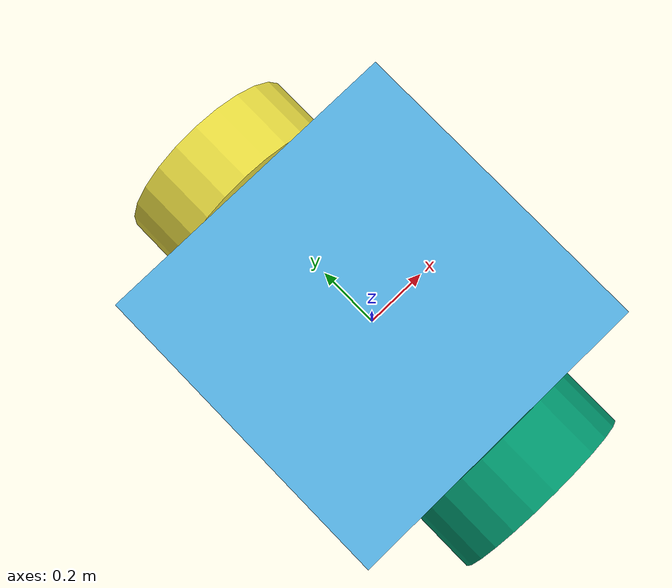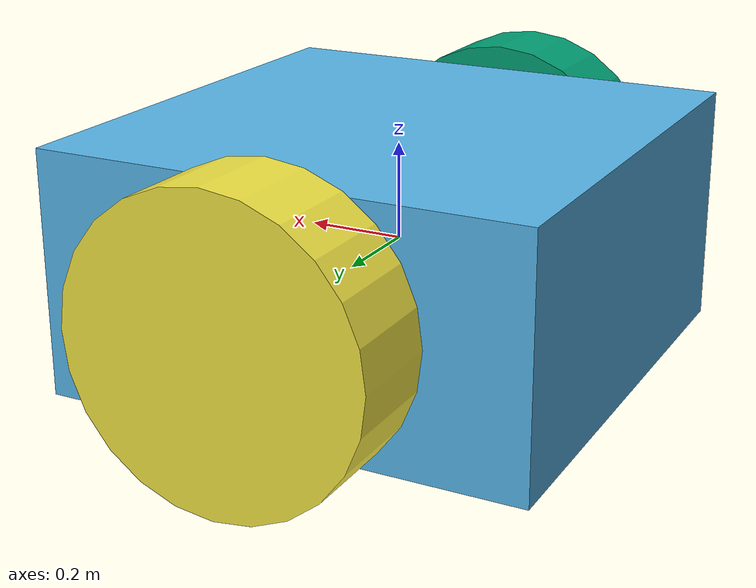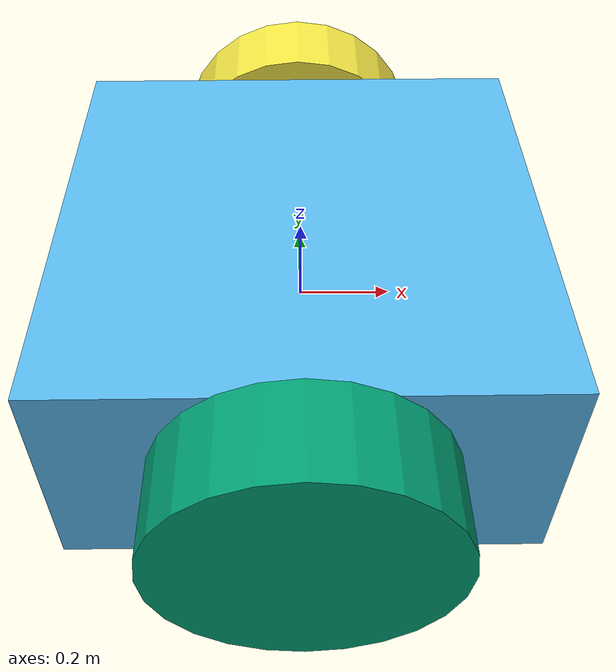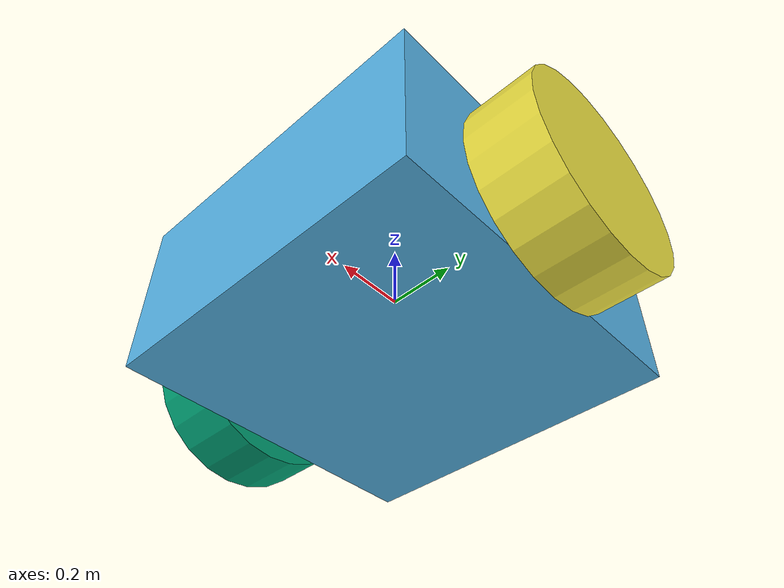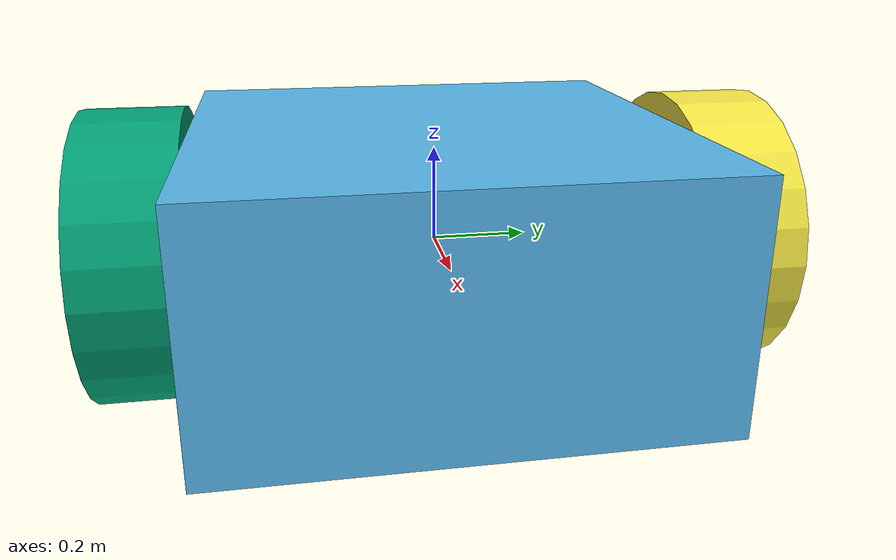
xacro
<?xml version="1.0"?>
<robot xmlns:xacro="http://www.ros.org/wiki/xacro" name="auv">
  <!-- settings -->
  <xacro:property name="imuHz" value="20"/>
  <!-- var -->
  <xacro:property name="cwd" value="/home/ubuntu/dev_ws/src/auv_description/model"/>
  <xacro:property name="pi" value="3.1415926535897931"/>
  <xacro:property name="dummy_link_name" value="dummy_link"/>
  <!-- incl -->
  <xacro:include filename="${cwd}/materials.xacro" />
  <xacro:include filename="${cwd}/inertial_macros.xacro" />
  <!-- base -->
  <link name="${dummy_link_name}">
  </link>
  <link name="base_link">
    <xacro:inertial_box mass="2" x="1.0" y="1.0" z="0.5">
      <origin xyz="0 0 0" rpy="0 0 0"/>
    </xacro:inertial_box>
    <visual>
      <geometry>
        <box size="1.0 1.0 0.5"/>
      </geometry>
    </visual>
    <collision>
      <geometry>
        <box size="1.0 1.0 0.5"/>
      </geometry>
    </collision>
  </link>
  <joint name="dummy_joint" type="fixed">
     <parent link="${dummy_link_name}"/>
     <child link="base_link"/>
  </joint>
  <gazebo reference='base_link'>
    <xacro:red/>
  </gazebo>

  <!-- wheels -->
  <xacro:macro name="wheel" params="name x y">
    <link name="${name}_link">
      <xacro:inertial_cylinder mass="1.2" radius="0.3" length="0.2">
        <origin xyz="0 0 0" rpy="0 0 0"/>
      </xacro:inertial_cylinder>
      <visual>
        <geometry>
          <cylinder radius="0.3" length="0.2"/>
        </geometry>
      </visual>
      <collision>
        <geometry>
          <cylinder radius="0.3" length="0.2"/>
        </geometry>
      </collision>
    </link>
    <joint name="${name}_joint" type="continuous">
      <origin xyz="${x} ${y} 0.0" rpy="1.5707 0.0 0.0"/>
      <parent link="base_link"/>
      <child link="${name}_link"/>
      <axis xyz="0.0 0.0 1.0"/>
    </joint>
  </xacro:macro>

  <xacro:wheel name="fl" x="0" y="-0.6"/>
  <xacro:wheel name="fr" x="0" y="0.6"/>

  <!-- plugins -->
  <gazebo>
    <plugin
      filename="ignition-gazebo-diff-drive-system"
      name="ignition::gazebo::systems::DiffDrive">
      <left_joint>fl_joint</left_joint>
      <right_joint>fr_joint</right_joint>
      <wheel_separation>1</wheel_separation>
      <wheel_radius>0.3</wheel_radius>
      <odom_publish_frequency>${imuHz}</odom_publish_frequency>
      <topic>cmd_vel</topic>
    </plugin>
    <plugin filename="ignition-gazebo-pose-publisher-system" name="ignition::gazebo::systems::PosePublisher">
      <publish_link_pose>false</publish_link_pose>
      <publish_collision_pose>false</publish_collision_pose>
      <publish_visual_pose>false</publish_visual_pose>
      <publish_sensor_pose>false</publish_sensor_pose>
      <publish_nested_model_pose>true</publish_nested_model_pose>
      <update_frequency>20</update_frequency>
      <use_pose_vector_msg>false</use_pose_vector_msg>
    </plugin>
  </gazebo>

  <!-- sensors -->
  <gazebo reference="base_link">
    <sensor name="imu_sensor" type="imu">
      <always_on>1</always_on>
      <update_rate>${imuHz}</update_rate>
      <visualize>true</visualize>
      <topic>model/auv/imu</topic>
      <angular_velocity>
        <x><noise type="none"/></x>
        <y><noise type="none"/></y>
        <z><noise type="none"/></z>
      </angular_velocity>
      <linear_acceleration>
        <x><noise type="none"/></x>
        <y><noise type="none"/></y>
        <z><noise type="none"/></z>
      </linear_acceleration>
    </sensor>
  </gazebo>
</robot>

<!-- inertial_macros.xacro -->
<robot xmlns:xacro="http://www.ros.org/wiki/xacro" >

    <!-- Specify some standard inertial calculations https://en.wikipedia.org/wiki/List_of_moments_of_inertia -->

    <xacro:macro name="inertial_sphere" params="mass radius *origin">
        <inertial>
            <xacro:insert_block name="origin"/>
            <mass value="${mass}" />
            <inertia ixx="${(2/5) * mass * (radius*radius)}" ixy="0.0" ixz="0.0"
                    iyy="${(2/5) * mass * (radius*radius)}" iyz="0.0"
                    izz="${(2/5) * mass * (radius*radius)}" />
        </inertial>
    </xacro:macro>

    <xacro:macro name="inertial_box" params="mass x y z *origin">
        <inertial>
            <xacro:insert_block name="origin"/>
            <mass value="${mass}" />
            <inertia ixx="${(1/12) * mass * (y*y+z*z)}" ixy="0.0" ixz="0.0"
                    iyy="${(1/12) * mass * (x*x+z*z)}" iyz="0.0"
                    izz="${(1/12) * mass * (x*x+y*y)}" />
        </inertial>
    </xacro:macro>

    <xacro:macro name="inertial_cylinder" params="mass length radius *origin">
        <inertial>
            <xacro:insert_block name="origin"/>
            <mass value="${mass}" />
            <inertia ixx="${(1/12) * mass * (3*radius*radius + length*length)}" ixy="0.0" ixz="0.0"
                    iyy="${(1/12) * mass * (3*radius*radius + length*length)}" iyz="0.0"
                    izz="${(1/2) * mass * (radius*radius)}" />
        </inertial>
    </xacro:macro>

</robot>
